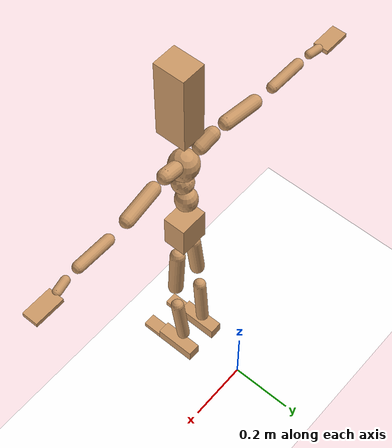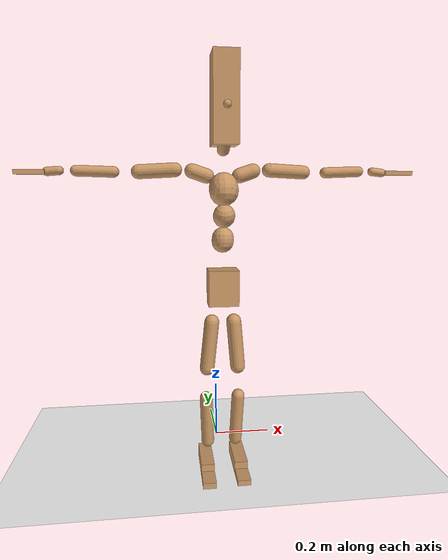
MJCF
<mujoco model="humanoid">
  <option integrator="implicitfast" />

  <visual>
    <global offwidth="1280" offheight="960" />
    <headlight active="1" ambient="0.34 0.34 0.34" diffuse="0.5 0.5 0.5" />
  </visual>

  <default>
    <joint damping="2" stiffness="2" armature="0.01" limited="true" solimplimit="0 .99 .01" />
    <geom condim="1" friction="0.7 0.005 0.0001" solimp=".99 .99 .003" solref="0.015 1" margin="0.001" rgba="0.8 0.6 .4 1" />
    <default class="smplcontact">
      <geom condim="3" friction="1. 0.005 0.0001" solref="0.015 1" solimp="0.98 0.98 0.001" priority="1" />
    </default>
    <default class="stiff_medium">
      <joint stiffness="10" />
    </default>
    <default class="stiff_medium_higher">
      <joint stiffness="50" />
    </default>
    <default class="stiff_high">
      <joint stiffness="100" />
    </default>
  </default>

  <asset>
    <texture type="skybox" builtin="gradient" rgb1="0.99 0.99 0.99" rgb2="0.608 0.828 0.892" width="100" />
    <texture builtin="flat" height="1278" mark="cross" markrgb="1 1 1" name="texgeom" random="0.01" rgb1="0.8 0.6 0.4" rgb2="0.8 0.6 0.4" type="cube" width="127" />
    <texture name="texplane" type="2d" builtin="checker" markrgb="1 1 1" rgb1="0.756 0.772 0.76" rgb2="0.6 0.6 0.6" width="100" height="100" />
    <material name="MatPlane" reflectance="0.5" texture="texplane" texrepeat="1 1" texuniform="true" />
    <material name="geom" texture="texgeom" texuniform="true" />
  </asset>

  <worldbody>
    <light name="tracking_light" pos="0 0 7" dir="0 0 -1" directional="true" cutoff="100" exponent="1" diffuse="1 1 1" specular="0.1 0.1 0.1" mode="trackcom" />
    <camera name="back" pos="0 3 2.4" xyaxes="-1 0 0 0 -1 2" mode="trackcom" />
    <camera name="side" pos="-3 0 2.4" xyaxes="0 -1 0 1 0 2" mode="trackcom" />
    <camera name="front_side" pos="-2.8 -2.8 0.8" xyaxes="0.5 -0.5 0 0.1 0.1 1" mode="trackcom" />
    <geom condim="3" name="floor" pos="0 0 0" rgba="1 1 1 1" size="100 100 .2" type="plane" material="MatPlane" />
    <body name="Pelvis" pos="-0.0018 -0.2233 0.626105" euler="90 0 0">
      <site name="Pelvis" size="0.01" />
      <freejoint name="Pelvis" />
      <geom type="box" pos="0 -0.00937737 -0.0024189" size="0.0470146 0.0559542 0.0365034" quat="1.0000 0.0000 0.0000 0.0000" density="3165.830099" name="Pelvis" />
      <body name="L_Hip" pos="0.0305661 -0.070834 -0.00299064">
        <joint name="L_Hip_x" type="hinge" pos="0 0 0" axis="1 0 0" stiffness="10" range="-160.0 22.92" class="stiff_medium" damping="15" />
        <joint name="L_Hip_y" type="hinge" pos="0 0 0" axis="0 1 0" stiffness="10" range="-70.0 70.0" class="stiff_medium" damping="10" />
        <joint name="L_Hip_z" type="hinge" pos="0 0 0" axis="0 0 1" stiffness="10" range="-28.65 90.0" class="stiff_medium" damping="10" />
        <geom type="capsule" density="2040.816327" fromto="0.0046374 -0.0506375 -0.000607416 0.0184778 -0.202679 -0.0024303" size="0.0235606" name="L_Hip" />
        <body name="L_Knee" pos="0.0231152 -0.253317 -0.00303771">
          <joint name="L_Knee_x" type="hinge" pos="0 0 0" axis="1 0 0" range="-5.16 171.89" damping="8" />
          <joint name="L_Knee_y" type="hinge" pos="0 0 0" axis="0 1 0" range="-4.58 6.88" damping="8" />
          <joint name="L_Knee_z" type="hinge" pos="0 0 0" axis="0 0 1" range="-6.88 4.58" damping="8" />
          <geom type="capsule" density="1234.567901" fromto="-0.00183253 -0.0537387 -0.00589292 -0.00736868 -0.214962 -0.0236491" size="0.0207257" name="L_Knee" />
          <body name="L_Ankle" pos="-0.00920121 -0.268701 -0.029542">
            <joint name="L_Ankle_x" type="hinge" pos="0 0 0" axis="1 0 0" range="-45.84 45.84" class="stiff_medium" damping="6" />
            <joint name="L_Ankle_y" type="hinge" pos="0 0 0" axis="0 1 0" range="-74.48 22.92" class="stiff_medium" damping="3" />
            <joint name="L_Ankle_z" type="hinge" pos="0 0 0" axis="0 0 1" range="-4.58 4.58" class="stiff_medium" damping="6" />
            <geom type="box" pos="0.0102473 -0.0105112 0.0188492" size="0.0212423 0.0204067 0.0662058" quat="1.0000 0.0000 0.0000 0.0000" density="449.071558" name="L_Ankle" class="smplcontact" />
            <body name="L_Toe" pos="0.0116107 -0.0245408 0.0929218">
              <joint name="L_Toe_x" type="hinge" pos="0 0 0" axis="1 0 0" range="-91.67 22.92" />
              <joint name="L_Toe_y" type="hinge" pos="0 0 0" axis="0 1 0" range="-4.58 4.58" />
              <joint name="L_Toe_z" type="hinge" pos="0 0 0" axis="0 0 1" range="-4.58 4.58" />
              <geom type="box" pos="-0.0013194 0.0024189 0.0193165" size="0.0210224 0.008796 0.038633" quat="1.0000 0.0000 0.0000 0.0000" density="423.206892" name="L_Toe" class="smplcontact" />
            </body>
          </body>
        </body>
      </body>
      <body name="R_Hip" pos="-0.0297745 -0.0701365 -0.00189114">
        <joint name="R_Hip_x" type="hinge" pos="0 0 0" axis="1 0 0" stiffness="10" range="-160.0 22.92" class="stiff_medium" damping="15" />
        <joint name="R_Hip_y" type="hinge" pos="0 0 0" axis="0 1 0" stiffness="10" range="-70.0 70.0" class="stiff_medium" damping="10" />
        <joint name="R_Hip_z" type="hinge" pos="0 0 0" axis="0 0 1" stiffness="10" range="-90.0 28.65" class="stiff_medium" damping="10" />
        <geom type="capsule" density="2040.816327" fromto="-0.00517837 -0.0516505 -0.00120535 -0.0206391 -0.206663 -0.00478359" size="0.0232159" name="R_Hip" />
        <body name="R_Knee" pos="-0.0258175 -0.258313 -0.00598894">
          <joint name="R_Knee_x" type="hinge" pos="0 0 0" axis="1 0 0" range="-5.16 171.89" damping="8" />
          <joint name="R_Knee_y" type="hinge" pos="0 0 0" axis="0 1 0" range="-6.88 4.58" damping="8" />
          <joint name="R_Knee_z" type="hinge" pos="0 0 0" axis="0 0 1" range="-4.58 6.88" damping="8" />
          <geom type="capsule" density="1234.567901" fromto="0.00214147 -0.0538114 -0.00572054 0.00848779 -0.21517 -0.0228016" size="0.0207257" name="R_Knee" />
          <body name="R_Ankle" pos="0.0106293 -0.268981 -0.0285221">
            <joint name="R_Ankle_x" type="hinge" pos="0 0 0" axis="1 0 0" range="-45.84 45.84" class="stiff_medium" damping="6" />
            <joint name="R_Ankle_y" type="hinge" pos="0 0 0" axis="0 1 0" range="-22.92 74.48" class="stiff_medium" damping="3" />
            <joint name="R_Ankle_z" type="hinge" pos="0 0 0" axis="0 0 1" range="-4.58 4.58" class="stiff_medium" damping="6" />
            <geom type="box" pos="-0.00932376 -0.00765252 0.0199396" size="0.0212423 0.0210224 0.0673742" quat="1.0000 0.0000 0.0000 0.0000" density="434.700981" name="R_Ankle" class="smplcontact" />
            <body name="R_Toe" pos="-0.0111709 -0.0211544 0.0960374">
              <joint name="R_Toe_x" type="hinge" pos="0 0 0" axis="1 0 0" range="-91.67 22.92" />
              <joint name="R_Toe_y" type="hinge" pos="0 0 0" axis="0 1 0" range="-4.58 4.58" />
              <joint name="R_Toe_z" type="hinge" pos="0 0 0" axis="0 0 1" range="-4.58 4.58" />
              <geom type="box" pos="0.00184716 0.0019791 0.0176809" size="0.0210664 0.00949968 0.0383994" quat="1.0000 0.0000 0.0000 0.0000" density="407.384095" name="R_Toe" class="smplcontact" />
            </body>
          </body>
        </body>
      </body>
      <body name="Torso" pos="-0.0010995 0.0844738 -0.0117427">
        <joint name="Torso_x" type="hinge" pos="0 0 0" axis="1 0 0" range="-25.78 57.3" class="stiff_medium" damping="15" />
        <joint name="Torso_y" type="hinge" pos="0 0 0" axis="0 1 0" range="-57.3 57.3" class="stiff_high" damping="20" />
        <joint name="Torso_z" type="hinge" pos="0 0 0" axis="0 0 1" range="-34.38 34.38" class="stiff_high" damping="20" />
        <geom type="capsule" density="2040.816327" fromto="0.00187339 0.0476048 0.000374679 0.00226486 0.0581743 0.000452971" size="0.0341667" name="Torso" />
        <body name="Spine" pos="0.0041395 0.105857 0.0008279">
          <joint name="Spine_x" type="hinge" pos="0 0 0" axis="1 0 0" stiffness="10" range="-25.78 57.3" class="stiff_medium" damping="15" />
          <joint name="Spine_y" type="hinge" pos="0 0 0" axis="0 1 0" stiffness="10" range="-57.3 57.3" class="stiff_high" damping="8" />
          <joint name="Spine_z" type="hinge" pos="0 0 0" axis="0 0 1" stiffness="20" range="-34.38 34.38" class="stiff_high" damping="12" />
          <geom type="capsule" density="2040.816327" fromto="0.000462399 0.0185979 0.00900113 0.000540691 0.0227474 0.0110367" size="0.0335446" name="Spine" />
          <body name="Chest" pos="0.00100309 0.0413454 0.0200379">
            <joint name="Chest_x" type="hinge" pos="0 0 0" axis="1 0 0" stiffness="10" range="-25.78 57.3" class="stiff_medium" damping="15" />
            <joint name="Chest_y" type="hinge" pos="0 0 0" axis="0 1 0" stiffness="10" range="-57.3 57.3" class="stiff_high" damping="8" />
            <joint name="Chest_z" type="hinge" pos="0 0 0" axis="0 0 1" stiffness="20" range="-34.38 34.38" class="stiff_high" damping="12" />
            <geom type="capsule" density="2040.816327" fromto="-0.000552646 0.0533704 -0.0136446 -0.000630938 0.0651925 -0.016698" size="0.0445189" name="Chest" />
            <body name="Neck" pos="-0.00171703 0.166458 -0.0375072">
              <joint name="Neck_x" type="hinge" pos="0 0 0" axis="1 0 0" range="-28.65 57.3" class="stiff_medium_higher" damping="10" />
              <joint name="Neck_y" type="hinge" pos="0 0 0" axis="0 1 0" range="-40.11 40.11" class="stiff_medium_higher" damping="10" />
              <joint name="Neck_z" type="hinge" pos="0 0 0" axis="0 0 1" range="-40.11 40.11" class="stiff_medium_higher" damping="10" />
              <geom type="capsule" density="1000" fromto="0.000790511 0.0101305 0.00801522 0.00320508 0.0405073 0.0320051" size="0.0192712" name="Neck" />
              <body name="Head" pos="0.00403862 0.0506231 0.0399645">
                <joint name="Head_x" type="hinge" pos="0 0 0" axis="1 0 0" range="-28.65 57.3" class="stiff_medium_higher" damping="2" />
                <joint name="Head_y" type="hinge" pos="0 0 0" axis="0 1 0" range="-40.11 40.11" class="stiff_medium_higher" damping="2" />
                <joint name="Head_z" type="hinge" pos="0 0 0" axis="0 0 1" range="-40.11 40.11" class="stiff_medium_higher" damping="2" />
                <geom type="box" pos="-0.00267078 0.0981661 -0.00737644" size="0.0385355 0.129319 0.0483284" quat="1.0000 0.0000 0.0000 0.0000" density="1018.069894" name="Head" />
                <geom type="capsule" name="nose" size="0.012718 0.006359" pos="0 0.0784432 0.031795" quat="1 0 0 0" mass="0" contype="0" conaffinity="0" />
              </body>
            </body>
            <body name="L_Thorax" pos="0.0347376 0.0953329 -0.0258076">
              <joint name="L_Thorax_x" type="hinge" pos="0 0 0" axis="1 0 0" range="-10.89 4.58" class="stiff_medium_higher" damping="20" />
              <joint name="L_Thorax_y" type="hinge" pos="0 0 0" axis="0 1 0" range="-28.65 17.19" class="stiff_medium_higher" damping="20" />
              <joint name="L_Thorax_z" type="hinge" pos="0 0 0" axis="0 0 1" range="-31.51 40.11" class="stiff_medium_higher" damping="20" />
              <geom type="capsule" density="1000" fromto="0.0139637 0.00468013 -0.00136996 0.0558518 0.0187196 -0.00543602" size="0.0226791" name="L_Thorax" />
              <body name="L_Shoulder" pos="0.0698155 0.0233997 -0.00680598">
                <joint name="L_Shoulder_x" type="hinge" pos="0 0 0" axis="1 0 0" range="-97.4 97.4" class="stiff_medium" damping="6" />
                <joint name="L_Shoulder_y" type="hinge" pos="0 0 0" axis="0 1 0" range="-108.86 80.21" class="stiff_medium" damping="6" />
                <joint name="L_Shoulder_z" type="hinge" pos="0 0 0" axis="0 0 1" range="-97.4 85.94" class="stiff_medium" damping="6" />
                <geom type="capsule" density="1000" fromto="0.0372562 -0.00184519 -0.00394706 0.149093 -0.00730066 -0.0157912" size="0.0210574" name="L_Shoulder" />
                <body name="L_Elbow" pos="0.18635 -0.00914585 -0.0197382">
                  <joint name="L_Elbow_x" type="hinge" pos="0 0 0" axis="1 0 0" range="-17.19 4.58" damping="5" />
                  <joint name="L_Elbow_y" type="hinge" pos="0 0 0" axis="0 1 0" range="-180.0 17.19" damping="5" />
                  <joint name="L_Elbow_z" type="hinge" pos="0 0 0" axis="0 0 1" range="-100.84 4.58" damping="5" />
                  <geom type="capsule" density="1000" fromto="0.0357477 0.00129134 -0.000153819 0.143134 0.00516759 -0.000656296" size="0.0164957" name="L_Elbow" />
                  <body name="L_Wrist" pos="0.178882 0.00645893 -0.000850846">
                    <joint name="L_Wrist_x" type="hinge" pos="0 0 0" axis="1 0 0" range="-180.0 22.92" />
                    <joint name="L_Wrist_y" type="hinge" pos="0 0 0" axis="0 1 0" range="-17.19 17.19" />
                    <joint name="L_Wrist_z" type="hinge" pos="0 0 0" axis="0 0 1" range="-22.92 22.92" />
                    <geom type="capsule" density="1000" fromto="0.0120585 -0.00115878 -0.0021533 0.0482369 -0.00467612 -0.00861372" size="0.0129521" name="L_Wrist" class="smplcontact" />
                    <body name="L_Hand" pos="0.0602929 -0.00587539 -0.0107259">
                      <joint name="L_Hand_x" type="hinge" pos="0 0 0" axis="1 0 0" range="-17.19 17.19" />
                      <joint name="L_Hand_y" type="hinge" pos="0 0 0" axis="0 1 0" range="-51.57 51.57" />
                      <joint name="L_Hand_z" type="hinge" pos="0 0 0" axis="0 0 1" range="-91.67 91.67" />
                      <geom type="box" pos="0.038207 0.0004398 -0.00255084" size="0.0453368 0.00694884 0.0236612" quat="1.0000 0.0000 0.0000 0.0000" density="400.552564" name="L_Hand" class="smplcontact" />
                    </body>
                  </body>
                </body>
              </body>
            </body>
            <body name="R_Thorax" pos="-0.0366156 0.0938304 -0.0277517">
              <joint name="R_Thorax_x" type="hinge" pos="0 0 0" axis="1 0 0" range="-10.89 4.58" class="stiff_medium_higher" damping="20" />
              <joint name="R_Thorax_y" type="hinge" pos="0 0 0" axis="0 1 0" range="-17.19 28.65" class="stiff_medium_higher" damping="20" />
              <joint name="R_Thorax_z" type="hinge" pos="0 0 0" axis="0 0 1" range="-40.11 31.51" class="stiff_medium_higher" damping="20" />
              <geom type="capsule" density="1000" fromto="-0.014729 0.00498637 -0.0013919 -0.0589187 0.0199464 -0.0056114" size="0.0222438" name="R_Thorax" />
              <body name="R_Shoulder" pos="-0.0736576 0.0249797 -0.00700426">
                <joint name="R_Shoulder_x" type="hinge" pos="0 0 0" axis="1 0 0" range="-97.4 97.4" class="stiff_medium" damping="6" />
                <joint name="R_Shoulder_y" type="hinge" pos="0 0 0" axis="0 1 0" range="-80.21 108.86" class="stiff_medium" damping="6" />
                <joint name="R_Shoulder_z" type="hinge" pos="0 0 0" axis="0 0 1" range="-85.94 97.4" class="stiff_medium" damping="6" />
                <geom type="capsule" density="1000" fromto="-0.0363953 -0.00192677 -0.00307469 -0.14572 -0.00766937 -0.0122628" size="0.0216276" name="R_Shoulder" />
                <body name="R_Elbow" pos="-0.182114 -0.00955533 -0.0153374">
                  <joint name="R_Elbow_x" type="hinge" pos="0 0 0" axis="1 0 0" range="-17.19 4.58" damping="5" />
                  <joint name="R_Elbow_y" type="hinge" pos="0 0 0" axis="0 1 0" range="-17.19 180.0" damping="5" />
                  <joint name="R_Elbow_z" type="hinge" pos="0 0 0" axis="0 0 1" range="-4.58 100.84" damping="5" />
                  <geom type="capsule" density="1000" fromto="-0.0366814 0.00112846 -0.000790066 -0.14658 0.00443045 -0.00315889" size="0.0166178" name="R_Elbow" />
                  <body name="R_Wrist" pos="-0.183263 0.00555893 -0.0039897">
                    <joint name="R_Wrist_x" type="hinge" pos="0 0 0" axis="1 0 0" range="-180.0 22.92" />
                    <joint name="R_Wrist_y" type="hinge" pos="0 0 0" axis="0 1 0" range="-17.19 17.19" />
                    <joint name="R_Wrist_z" type="hinge" pos="0 0 0" axis="0 0 1" range="-22.92 22.92" />
                    <geom type="capsule" density="1000" fromto="-0.0121319 -0.000871038 -0.0014959 -0.0485974 -0.00352699 -0.00594642" size="0.013278" name="R_Wrist" class="smplcontact" />
                    <body name="R_Hand" pos="-0.0607257 -0.00439776 -0.00740114">
                      <joint name="R_Hand_x" type="hinge" pos="0 0 0" axis="1 0 0" range="-17.19 17.19" />
                      <joint name="R_Hand_y" type="hinge" pos="0 0 0" axis="0 1 0" range="-51.57 51.57" />
                      <joint name="R_Hand_z" type="hinge" pos="0 0 0" axis="0 0 1" range="-91.67 91.67" />
                      <geom type="box" pos="-0.0358045 -0.00039582 -0.00347442" size="0.0440969 0.00721272 0.0240131" quat="1.0000 0.0000 0.0000 0.0000" density="403.679611" name="R_Hand" class="smplcontact" />
                    </body>
                  </body>
                </body>
              </body>
            </body>
          </body>
        </body>
      </body>
    </body>
  </worldbody>
  <actuator>
    <general name="L_Hip_x" joint="L_Hip_x" biastype="affine" gainprm="287.33006409732246" biasprm="-215.3247604770444 -180 -2.0" ctrllimited="true" ctrlrange="-1 1" forcerange="-360 360" />
    <general name="L_Hip_y" joint="L_Hip_y" biastype="affine" gainprm="219.9114857512855" biasprm="0.0 -180 -2.0" ctrllimited="true" ctrlrange="-1 1" forcerange="-360 360" />
    <general name="L_Hip_z" joint="L_Hip_z" biastype="affine" gainprm="186.3749841742145" biasprm="96.3683546488669 -180 -2.0" ctrllimited="true" ctrlrange="-1 1" forcerange="-360 360" />
    <general name="L_Knee_x" joint="L_Knee_x" biastype="affine" gainprm="278.10948965903646" biasprm="261.8988715665131 -180 -2.0" ctrllimited="true" ctrlrange="-1 1" forcerange="-360 360" />
    <general name="L_Knee_y" joint="L_Knee_y" biastype="affine" gainprm="18.001325905069514" biasprm="3.612831551628262 -180 -2.0" ctrllimited="true" ctrlrange="-1 1" forcerange="-360 360" />
    <general name="L_Knee_z" joint="L_Knee_z" biastype="affine" gainprm="18.001325905069514" biasprm="-3.612831551628262 -180 -2.0" ctrllimited="true" ctrlrange="-1 1" forcerange="-360 360" />
    <general name="L_Ankle_x" joint="L_Ankle_x" biastype="affine" gainprm="72.00530362027807" biasprm="0.0 -90 -2.0" ctrllimited="true" ctrlrange="-1 1" forcerange="-180 180" />
    <general name="L_Ankle_y" joint="L_Ankle_y" biastype="affine" gainprm="76.49778111491148" biasprm="-40.49512930477244 -90 -2.0" ctrllimited="true" ctrlrange="-1 1" forcerange="-180 180" />
    <general name="L_Ankle_z" joint="L_Ankle_z" biastype="affine" gainprm="7.1942471767206255" biasprm="0.0 -90 -2.0" ctrllimited="true" ctrlrange="-1 1" forcerange="-180 180" />
    <general name="L_Toe_x" joint="L_Toe_x" biastype="affine" gainprm="71.99902043497087" biasprm="-43.19689898685965 -72 -0.8" ctrllimited="true" ctrlrange="-1 1" forcerange="-144 144" />
    <general name="L_Toe_y" joint="L_Toe_y" biastype="affine" gainprm="5.755397741376501" biasprm="0.0 -72 -0.8" ctrllimited="true" ctrlrange="-1 1" forcerange="-144 144" />
    <general name="L_Toe_z" joint="L_Toe_z" biastype="affine" gainprm="5.755397741376501" biasprm="0.0 -72 -0.8" ctrllimited="true" ctrlrange="-1 1" forcerange="-144 144" />
    <general name="R_Hip_x" joint="R_Hip_x" biastype="affine" gainprm="287.33006409732246" biasprm="-215.3247604770444 -180 -2.0" ctrllimited="true" ctrlrange="-1 1" forcerange="-360 360" />
    <general name="R_Hip_y" joint="R_Hip_y" biastype="affine" gainprm="219.9114857512855" biasprm="0.0 -180 -2.0" ctrllimited="true" ctrlrange="-1 1" forcerange="-360 360" />
    <general name="R_Hip_z" joint="R_Hip_z" biastype="affine" gainprm="186.3749841742145" biasprm="-96.3683546488669 -180 -2.0" ctrllimited="true" ctrlrange="-1 1" forcerange="-360 360" />
    <general name="R_Knee_x" joint="R_Knee_x" biastype="affine" gainprm="278.10948965903646" biasprm="261.8988715665131 -180 -2.0" ctrllimited="true" ctrlrange="-1 1" forcerange="-360 360" />
    <general name="R_Knee_y" joint="R_Knee_y" biastype="affine" gainprm="18.001325905069514" biasprm="-3.612831551628262 -180 -2.0" ctrllimited="true" ctrlrange="-1 1" forcerange="-360 360" />
    <general name="R_Knee_z" joint="R_Knee_z" biastype="affine" gainprm="18.001325905069514" biasprm="3.612831551628262 -180 -2.0" ctrllimited="true" ctrlrange="-1 1" forcerange="-360 360" />
    <general name="R_Ankle_x" joint="R_Ankle_x" biastype="affine" gainprm="72.00530362027807" biasprm="0.0 -90 -2.0" ctrllimited="true" ctrlrange="-1 1" forcerange="-180 180" />
    <general name="R_Ankle_y" joint="R_Ankle_y" biastype="affine" gainprm="76.49778111491148" biasprm="40.49512930477244 -90 -2.0" ctrllimited="true" ctrlrange="-1 1" forcerange="-180 180" />
    <general name="R_Ankle_z" joint="R_Ankle_z" biastype="affine" gainprm="7.1942471767206255" biasprm="0.0 -90 -2.0" ctrllimited="true" ctrlrange="-1 1" forcerange="-180 180" />
    <general name="R_Toe_x" joint="R_Toe_x" biastype="affine" gainprm="71.99902043497087" biasprm="-43.19689898685965 -72 -0.8" ctrllimited="true" ctrlrange="-1 1" forcerange="-144 144" />
    <general name="R_Toe_y" joint="R_Toe_y" biastype="affine" gainprm="5.755397741376501" biasprm="0.0 -72 -0.8" ctrllimited="true" ctrlrange="-1 1" forcerange="-144 144" />
    <general name="R_Toe_z" joint="R_Toe_z" biastype="affine" gainprm="5.755397741376501" biasprm="0.0 -72 -0.8" ctrllimited="true" ctrlrange="-1 1" forcerange="-144 144" />
    <general name="Torso_x" joint="Torso_x" biastype="affine" gainprm="174.00234510682668" biasprm="66.0153336274335 -240 -4.0" ctrllimited="true" ctrlrange="-1 1" forcerange="-360 360" />
    <general name="Torso_y" joint="Torso_y" biastype="affine" gainprm="240.0176787342602" biasprm="0.0 -240 -4.0" ctrllimited="true" ctrlrange="-1 1" forcerange="-360 360" />
    <general name="Torso_z" joint="Torso_z" biastype="affine" gainprm="144.01060724055614" biasprm="0.0 -240 -4.0" ctrllimited="true" ctrlrange="-1 1" forcerange="-360 360" />
    <general name="Spine_x" joint="Spine_x" biastype="affine" gainprm="174.00234510682668" biasprm="66.0153336274335 -240 -4.0" ctrllimited="true" ctrlrange="-1 1" forcerange="-360 360" />
    <general name="Spine_y" joint="Spine_y" biastype="affine" gainprm="240.0176787342602" biasprm="0.0 -240 -4.0" ctrllimited="true" ctrlrange="-1 1" forcerange="-360 360" />
    <general name="Spine_z" joint="Spine_z" biastype="affine" gainprm="144.01060724055614" biasprm="0.0 -240 -4.0" ctrllimited="true" ctrlrange="-1 1" forcerange="-360 360" />
    <general name="Chest_x" joint="Chest_x" biastype="affine" gainprm="174.00234510682668" biasprm="66.0153336274335 -240 -4.0" ctrllimited="true" ctrlrange="-1 1" forcerange="-360 360" />
    <general name="Chest_y" joint="Chest_y" biastype="affine" gainprm="240.0176787342602" biasprm="0.0 -240 -4.0" ctrllimited="true" ctrlrange="-1 1" forcerange="-360 360" />
    <general name="Chest_z" joint="Chest_z" biastype="affine" gainprm="144.01060724055614" biasprm="0.0 -240 -4.0" ctrllimited="true" ctrlrange="-1 1" forcerange="-360 360" />
    <general name="Neck_x" joint="Neck_x" biastype="affine" gainprm="27.00198885760427" biasprm="9.000662952534757 -36 -0.8" ctrllimited="true" ctrlrange="-1 1" forcerange="-72 72" />
    <general name="Neck_y" joint="Neck_y" biastype="affine" gainprm="25.20185626709732" biasprm="0.0 -36 -0.8" ctrllimited="true" ctrlrange="-1 1" forcerange="-72 72" />
    <general name="Neck_z" joint="Neck_z" biastype="affine" gainprm="25.20185626709732" biasprm="0.0 -36 -0.8" ctrllimited="true" ctrlrange="-1 1" forcerange="-72 72" />
    <general name="Head_x" joint="Head_x" biastype="affine" gainprm="18.001325905069514" biasprm="6.000441968356505 -24 -0.8" ctrllimited="true" ctrlrange="-1 1" forcerange="-48 48" />
    <general name="Head_y" joint="Head_y" biastype="affine" gainprm="16.801237511398213" biasprm="0.0 -24 -0.8" ctrllimited="true" ctrlrange="-1 1" forcerange="-48 48" />
    <general name="Head_z" joint="Head_z" biastype="affine" gainprm="16.801237511398213" biasprm="0.0 -24 -0.8" ctrllimited="true" ctrlrange="-1 1" forcerange="-48 48" />
    <general name="L_Thorax_x" joint="L_Thorax_x" biastype="affine" gainprm="16.200146117011364" biasprm="-6.6078165480505335 -120 -1.6" ctrllimited="true" ctrlrange="-1 1" forcerange="-240 240" />
    <general name="L_Thorax_y" joint="L_Thorax_y" biastype="affine" gainprm="48.00353574685204" biasprm="-12.00088393671301 -120 -1.6" ctrllimited="true" ctrlrange="-1 1" forcerange="-240 240" />
    <general name="L_Thorax_z" joint="L_Thorax_z" biastype="affine" gainprm="75.00028861670033" biasprm="9.00589894029074 -120 -1.6" ctrllimited="true" ctrlrange="-1 1" forcerange="-240 240" />
    <general name="L_Shoulder_x" joint="L_Shoulder_x" biastype="affine" gainprm="81.5976331892389" biasprm="0.0 -48 -1.6" ctrllimited="true" ctrlrange="-1 1" forcerange="-96 96" />
    <general name="L_Shoulder_y" joint="L_Shoulder_y" biastype="affine" gainprm="79.19745640189629" biasprm="-12.00088393671301 -48 -1.6" ctrllimited="true" ctrlrange="-1 1" forcerange="-96 96" />
    <general name="L_Shoulder_z" joint="L_Shoulder_z" biastype="affine" gainprm="76.79727961455369" biasprm="-4.800353574685214 -48 -1.6" ctrllimited="true" ctrlrange="-1 1" forcerange="-96 96" />
    <general name="L_Elbow_x" joint="L_Elbow_x" biastype="affine" gainprm="13.67849441372996" biasprm="-7.923096672353461 -72 -0.8" ctrllimited="true" ctrlrange="-1 1" forcerange="-144 144" />
    <general name="L_Elbow_y" joint="L_Elbow_y" biastype="affine" gainprm="123.89813107227425" biasprm="-102.29653998619085 -72 -0.8" ctrllimited="true" ctrlrange="-1 1" forcerange="-144 144" />
    <general name="L_Elbow_z" joint="L_Elbow_z" biastype="affine" gainprm="66.23733950828719" biasprm="-60.4819417669107 -72 -0.8" ctrllimited="true" ctrlrange="-1 1" forcerange="-144 144" />
    <general name="L_Wrist_x" joint="L_Wrist_x" biastype="affine" gainprm="21.24973270888136" biasprm="-16.449379134196157 -12 -0.8" ctrllimited="true" ctrlrange="-1 1" forcerange="-24 24" />
    <general name="L_Wrist_y" joint="L_Wrist_y" biastype="affine" gainprm="3.6002651810139037" biasprm="0.0 -12 -0.8" ctrllimited="true" ctrlrange="-1 1" forcerange="-24 24" />
    <general name="L_Wrist_z" joint="L_Wrist_z" biastype="affine" gainprm="4.800353574685205" biasprm="0.0 -12 -0.8" ctrllimited="true" ctrlrange="-1 1" forcerange="-24 24" />
    <general name="L_Hand_x" joint="L_Hand_x" biastype="affine" gainprm="3.6002651810139037" biasprm="0.0 -12 -0.8" ctrllimited="true" ctrlrange="-1 1" forcerange="-24 24" />
    <general name="L_Hand_y" joint="L_Hand_y" biastype="affine" gainprm="10.800795543041708" biasprm="0.0 -12 -0.8" ctrllimited="true" ctrlrange="-1 1" forcerange="-24 24" />
    <general name="L_Hand_z" joint="L_Hand_z" biastype="affine" gainprm="19.199319903638422" biasprm="0.0 -12 -0.8" ctrllimited="true" ctrlrange="-1 1" forcerange="-24 24" />
    <general name="R_Thorax_x" joint="R_Thorax_x" biastype="affine" gainprm="16.200146117011364" biasprm="-6.6078165480505335 -120 -1.6" ctrllimited="true" ctrlrange="-1 1" forcerange="-240 240" />
    <general name="R_Thorax_y" joint="R_Thorax_y" biastype="affine" gainprm="48.00353574685204" biasprm="12.000883936713002 -120 -1.6" ctrllimited="true" ctrlrange="-1 1" forcerange="-240 240" />
    <general name="R_Thorax_z" joint="R_Thorax_z" biastype="affine" gainprm="75.00028861670033" biasprm="-9.00589894029074 -120 -1.6" ctrllimited="true" ctrlrange="-1 1" forcerange="-240 240" />
    <general name="R_Shoulder_x" joint="R_Shoulder_x" biastype="affine" gainprm="81.5976331892389" biasprm="0.0 -48 -1.6" ctrllimited="true" ctrlrange="-1 1" forcerange="-96 96" />
    <general name="R_Shoulder_y" joint="R_Shoulder_y" biastype="affine" gainprm="79.19745640189629" biasprm="12.00088393671301 -48 -1.6" ctrllimited="true" ctrlrange="-1 1" forcerange="-96 96" />
    <general name="R_Shoulder_z" joint="R_Shoulder_z" biastype="affine" gainprm="76.79727961455369" biasprm="4.800353574685204 -48 -1.6" ctrllimited="true" ctrlrange="-1 1" forcerange="-96 96" />
    <general name="R_Elbow_x" joint="R_Elbow_x" biastype="affine" gainprm="13.67849441372996" biasprm="-7.923096672353461 -72 -0.8" ctrllimited="true" ctrlrange="-1 1" forcerange="-144 144" />
    <general name="R_Elbow_y" joint="R_Elbow_y" biastype="affine" gainprm="123.89813107227425" biasprm="102.29653998619085 -72 -0.8" ctrllimited="true" ctrlrange="-1 1" forcerange="-144 144" />
    <general name="R_Elbow_z" joint="R_Elbow_z" biastype="affine" gainprm="66.23733950828719" biasprm="60.481941766910694 -72 -0.8" ctrllimited="true" ctrlrange="-1 1" forcerange="-144 144" />
    <general name="R_Wrist_x" joint="R_Wrist_x" biastype="affine" gainprm="21.24973270888136" biasprm="-16.449379134196157 -12 -0.8" ctrllimited="true" ctrlrange="-1 1" forcerange="-24 24" />
    <general name="R_Wrist_y" joint="R_Wrist_y" biastype="affine" gainprm="3.6002651810139037" biasprm="0.0 -12 -0.8" ctrllimited="true" ctrlrange="-1 1" forcerange="-24 24" />
    <general name="R_Wrist_z" joint="R_Wrist_z" biastype="affine" gainprm="4.800353574685205" biasprm="0.0 -12 -0.8" ctrllimited="true" ctrlrange="-1 1" forcerange="-24 24" />
    <general name="R_Hand_x" joint="R_Hand_x" biastype="affine" gainprm="3.6002651810139037" biasprm="0.0 -12 -0.8" ctrllimited="true" ctrlrange="-1 1" forcerange="-24 24" />
    <general name="R_Hand_y" joint="R_Hand_y" biastype="affine" gainprm="10.800795543041708" biasprm="0.0 -12 -0.8" ctrllimited="true" ctrlrange="-1 1" forcerange="-24 24" />
    <general name="R_Hand_z" joint="R_Hand_z" biastype="affine" gainprm="19.199319903638422" biasprm="0.0 -12 -0.8" ctrllimited="true" ctrlrange="-1 1" forcerange="-24 24" />
  </actuator>
  <contact>
    <exclude body1="Torso" body2="Chest" />
    <exclude body1="Head" body2="Chest" />
    <exclude body1="R_Knee" body2="R_Toe" />
    <exclude body1="R_Knee" body2="L_Ankle" />
    <exclude body1="R_Knee" body2="L_Toe" />
    <exclude body1="L_Knee" body2="L_Toe" />
    <exclude body1="L_Knee" body2="R_Ankle" />
    <exclude body1="L_Knee" body2="R_Toe" />
    <exclude body1="L_Shoulder" body2="Chest" />
    <exclude body1="R_Shoulder" body2="Chest" />
  </contact>
  <sensor>
    <framelinvel name="sensor_Pelvis_framelinvel" objtype="xbody" objname="Pelvis" />
    <framelinvel name="sensor_L_Hip_framelinvel" objtype="xbody" objname="L_Hip" />
    <framelinvel name="sensor_L_Knee_framelinvel" objtype="xbody" objname="L_Knee" />
    <framelinvel name="sensor_L_Ankle_framelinvel" objtype="xbody" objname="L_Ankle" />
    <framelinvel name="sensor_L_Toe_framelinvel" objtype="xbody" objname="L_Toe" />
    <framelinvel name="sensor_R_Hip_framelinvel" objtype="xbody" objname="R_Hip" />
    <framelinvel name="sensor_R_Knee_framelinvel" objtype="xbody" objname="R_Knee" />
    <framelinvel name="sensor_R_Ankle_framelinvel" objtype="xbody" objname="R_Ankle" />
    <framelinvel name="sensor_R_Toe_framelinvel" objtype="xbody" objname="R_Toe" />
    <framelinvel name="sensor_Torso_framelinvel" objtype="xbody" objname="Torso" />
    <framelinvel name="sensor_Spine_framelinvel" objtype="xbody" objname="Spine" />
    <framelinvel name="sensor_Chest_framelinvel" objtype="xbody" objname="Chest" />
    <framelinvel name="sensor_Neck_framelinvel" objtype="xbody" objname="Neck" />
    <framelinvel name="sensor_Head_framelinvel" objtype="xbody" objname="Head" />
    <framelinvel name="sensor_L_Thorax_framelinvel" objtype="xbody" objname="L_Thorax" />
    <framelinvel name="sensor_L_Shoulder_framelinvel" objtype="xbody" objname="L_Shoulder" />
    <framelinvel name="sensor_L_Elbow_framelinvel" objtype="xbody" objname="L_Elbow" />
    <framelinvel name="sensor_L_Wrist_framelinvel" objtype="xbody" objname="L_Wrist" />
    <framelinvel name="sensor_L_Hand_framelinvel" objtype="xbody" objname="L_Hand" />
    <framelinvel name="sensor_R_Thorax_framelinvel" objtype="xbody" objname="R_Thorax" />
    <framelinvel name="sensor_R_Shoulder_framelinvel" objtype="xbody" objname="R_Shoulder" />
    <framelinvel name="sensor_R_Elbow_framelinvel" objtype="xbody" objname="R_Elbow" />
    <framelinvel name="sensor_R_Wrist_framelinvel" objtype="xbody" objname="R_Wrist" />
    <framelinvel name="sensor_R_Hand_framelinvel" objtype="xbody" objname="R_Hand" />
    <frameangvel name="sensor_Pelvis_frameangvel" objtype="xbody" objname="Pelvis" />
    <frameangvel name="sensor_L_Hip_frameangvel" objtype="xbody" objname="L_Hip" />
    <frameangvel name="sensor_L_Knee_frameangvel" objtype="xbody" objname="L_Knee" />
    <frameangvel name="sensor_L_Ankle_frameangvel" objtype="xbody" objname="L_Ankle" />
    <frameangvel name="sensor_L_Toe_frameangvel" objtype="xbody" objname="L_Toe" />
    <frameangvel name="sensor_R_Hip_frameangvel" objtype="xbody" objname="R_Hip" />
    <frameangvel name="sensor_R_Knee_frameangvel" objtype="xbody" objname="R_Knee" />
    <frameangvel name="sensor_R_Ankle_frameangvel" objtype="xbody" objname="R_Ankle" />
    <frameangvel name="sensor_R_Toe_frameangvel" objtype="xbody" objname="R_Toe" />
    <frameangvel name="sensor_Torso_frameangvel" objtype="xbody" objname="Torso" />
    <frameangvel name="sensor_Spine_frameangvel" objtype="xbody" objname="Spine" />
    <frameangvel name="sensor_Chest_frameangvel" objtype="xbody" objname="Chest" />
    <frameangvel name="sensor_Neck_frameangvel" objtype="xbody" objname="Neck" />
    <frameangvel name="sensor_Head_frameangvel" objtype="xbody" objname="Head" />
    <frameangvel name="sensor_L_Thorax_frameangvel" objtype="xbody" objname="L_Thorax" />
    <frameangvel name="sensor_L_Shoulder_frameangvel" objtype="xbody" objname="L_Shoulder" />
    <frameangvel name="sensor_L_Elbow_frameangvel" objtype="xbody" objname="L_Elbow" />
    <frameangvel name="sensor_L_Wrist_frameangvel" objtype="xbody" objname="L_Wrist" />
    <frameangvel name="sensor_L_Hand_frameangvel" objtype="xbody" objname="L_Hand" />
    <frameangvel name="sensor_R_Thorax_frameangvel" objtype="xbody" objname="R_Thorax" />
    <frameangvel name="sensor_R_Shoulder_frameangvel" objtype="xbody" objname="R_Shoulder" />
    <frameangvel name="sensor_R_Elbow_frameangvel" objtype="xbody" objname="R_Elbow" />
    <frameangvel name="sensor_R_Wrist_frameangvel" objtype="xbody" objname="R_Wrist" />
    <frameangvel name="sensor_R_Hand_frameangvel" objtype="xbody" objname="R_Hand" />
    <subtreelinvel name="Chest_subtreelinvel" body="Chest" />
    <gyro name="Pelvis_gyro" site="Pelvis" />
  </sensor>
</mujoco>
